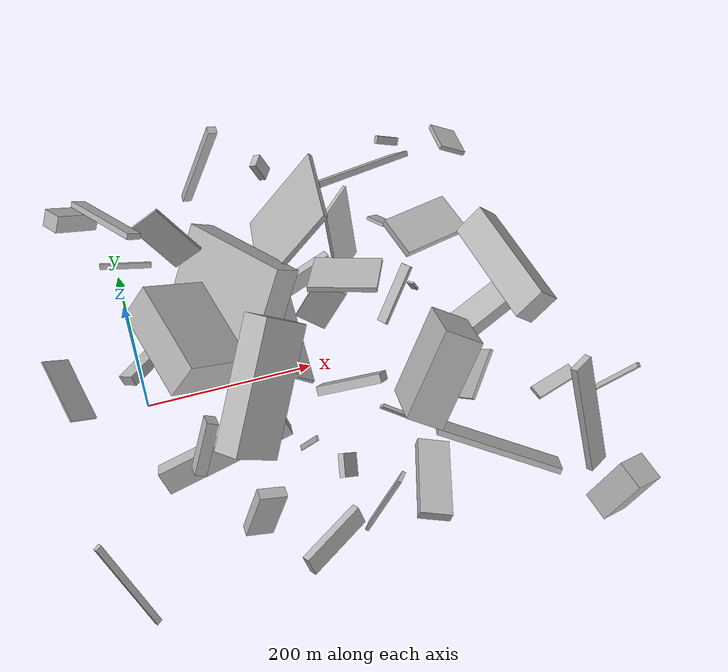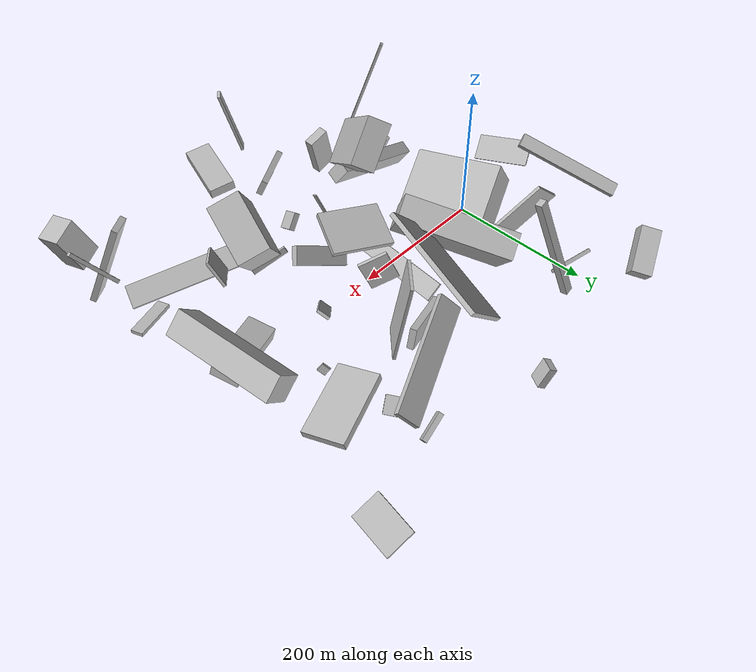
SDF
<sdf version="1.6">
 <world name="default">
  <scene>
   <sky><clouds><speed>12</speed></clouds></sky>
   <ambient>0.4 0.4 0.4 1</ambient>
   <background>0.7 0.7 0.7 1</background>
   <shadows>1</shadows>
  </scene>
  <gravity>0 0 -9.8066</gravity>
  <magnetic_field>6e-06 2.3e-05 -4.2e-05</magnetic_field>
  <physics default="0" name="default_physics" type="ode">
   <ode>
    <solver>
     <type>quick</type>
     <iters>10</iters>
     <sor>1.0</sor>
     <use_dynamic_moi_rescaling>0</use_dynamic_moi_rescaling>
    </solver>
    <constraints>
     <cfm>0</cfm>
     <erp>0.2</erp>
     <contact_max_correcting_vel>100</contact_max_correcting_vel>
     <contact_surface_layer>0.001</contact_surface_layer>
    </constraints>
   </ode>
   <max_step_size>0.004</max_step_size>
   <real_time_factor>1</real_time_factor>
   <real_time_update_rate>250</real_time_update_rate>
  </physics>
  <light name="sun" type="directional">
   <pose>0 0 10 0 0 0</pose>
   <diffuse>0.8 0.8 0.8 1</diffuse>
   <specular>0.2 0.2 0.2 1</specular>
   <attenuation>
    <range>1000</range>
    <constant>0.9</constant>
    <linear>0.01</linear>
    <quadratic>0.001</quadratic>
   </attenuation>
   <direction>-0.5 0.1 -0.9</direction>
  </light>
  <model name="building_1">
   <static>0</static>
   <pose>-1.569263986144028 -123.42864435132404 40.26653897094262 -0.998273766843868 0.9479654298079464 -1.024096351584111</pose>
   <link name="link">
    <gravity>0</gravity>
    <pose>0 0 75.0 0 0 0</pose>
    <collision name="collision"><geometry><box><size>29 19 150</size></box></geometry></collision>
    <visual name="visual">
     <cast_shadows>0</cast_shadows>
     <geometry><box><size>29 19 150</size></box></geometry>
     <material>
      <script>
       <uri>model://HANNAS_wall/materials/scripts</uri>
       <uri>model://HANNAS_wall/materials/textures</uri>
       <name>vrc/HANNAS_wall</name>
      </script>
     </material>
    </visual>
   </link>
  </model>
  <model name="building_2">
   <static>0</static>
   <pose>-56.17902348504986 -247.1571734723762 77.47360956983543 1.6273385102789746 -0.32215294973063 -0.931673296291797</pose>
   <link name="link">
    <gravity>0</gravity>
    <pose>0 0 3.5 0 0 0</pose>
    <collision name="collision"><geometry><box><size>4 150 7</size></box></geometry></collision>
    <visual name="visual">
     <cast_shadows>0</cast_shadows>
     <geometry><box><size>4 150 7</size></box></geometry>
     <material>
      <script>
       <uri>model://HANNAS_wall/materials/scripts</uri>
       <uri>model://HANNAS_wall/materials/textures</uri>
       <name>vrc/HANNAS_wall</name>
      </script>
     </material>
    </visual>
   </link>
  </model>
  <model name="building_3">
   <static>0</static>
   <pose>43.564571001832405 184.42750755089446 29.729788997988422 -1.4992367498188097 -0.9511161482804016 1.309158741059582</pose>
   <link name="link">
    <gravity>0</gravity>
    <pose>0 0 32.0 0 0 0</pose>
    <collision name="collision"><geometry><box><size>7 5 64</size></box></geometry></collision>
    <visual name="visual">
     <cast_shadows>0</cast_shadows>
     <geometry><box><size>7 5 64</size></box></geometry>
     <material>
      <script>
       <uri>model://HANNAS_wall/materials/scripts</uri>
       <uri>model://HANNAS_wall/materials/textures</uri>
       <name>vrc/HANNAS_wall</name>
      </script>
     </material>
    </visual>
   </link>
  </model>
  <model name="building_4">
   <static>0</static>
   <pose>248.89319473352091 21.645395524413175 133.14220336348407 0.2981547645197869 0.1342629438190483 2.742395049422628</pose>
   <link name="link">
    <gravity>0</gravity>
    <pose>0 0 3.0 0 0 0</pose>
    <collision name="collision"><geometry><box><size>79 59 6</size></box></geometry></collision>
    <visual name="visual">
     <cast_shadows>0</cast_shadows>
     <geometry><box><size>79 59 6</size></box></geometry>
     <material>
      <script>
       <uri>model://HANNAS_wall/materials/scripts</uri>
       <uri>model://HANNAS_wall/materials/textures</uri>
       <name>vrc/HANNAS_wall</name>
      </script>
     </material>
    </visual>
   </link>
  </model>
  <model name="building_5">
   <static>0</static>
   <pose>313.0299326233222 209.99889289783073 92.12125840713269 -0.37572195222977595 0.7644998295788409 -1.4444507431106732</pose>
   <link name="link">
    <gravity>0</gravity>
    <pose>0 0 15.5 0 0 0</pose>
    <collision name="collision"><geometry><box><size>7 150 31</size></box></geometry></collision>
    <visual name="visual">
     <cast_shadows>0</cast_shadows>
     <geometry><box><size>7 150 31</size></box></geometry>
     <material>
      <script>
       <uri>model://HANNAS_wall/materials/scripts</uri>
       <uri>model://HANNAS_wall/materials/textures</uri>
       <name>vrc/HANNAS_wall</name>
      </script>
     </material>
    </visual>
   </link>
  </model>
  <model name="building_6">
   <static>0</static>
   <pose>139.61652897357766 82.63072922967382 75.70616437449432 0.37839768572166205 0.8341141851397884 -2.3153161948955305</pose>
   <link name="link">
    <gravity>0</gravity>
    <pose>0 0 18.0 0 0 0</pose>
    <collision name="collision"><geometry><box><size>103 150 36</size></box></geometry></collision>
    <visual name="visual">
     <cast_shadows>0</cast_shadows>
     <geometry><box><size>103 150 36</size></box></geometry>
     <material>
      <script>
       <uri>model://HANNAS_wall/materials/scripts</uri>
       <uri>model://HANNAS_wall/materials/textures</uri>
       <name>vrc/HANNAS_wall</name>
      </script>
     </material>
    </visual>
   </link>
  </model>
  <model name="building_7">
   <static>0</static>
   <pose>16.71833450547273 60.20270559882968 21.451938301468548 0.21963344606337612 -0.9637885059072149 2.110055712027399</pose>
   <link name="link">
    <gravity>0</gravity>
    <pose>0 0 11.5 0 0 0</pose>
    <collision name="collision"><geometry><box><size>13 108 23</size></box></geometry></collision>
    <visual name="visual">
     <cast_shadows>0</cast_shadows>
     <geometry><box><size>13 108 23</size></box></geometry>
     <material>
      <script>
       <uri>model://HANNAS_wall/materials/scripts</uri>
       <uri>model://HANNAS_wall/materials/textures</uri>
       <name>vrc/HANNAS_wall</name>
      </script>
     </material>
    </visual>
   </link>
  </model>
  <model name="building_8">
   <static>0</static>
   <pose>443.6653646315424 99.10180617277716 75.51184915561218 1.4793675720904513 0.7884474948741632 0.05556238827337608</pose>
   <link name="link">
    <gravity>0</gravity>
    <pose>0 0 75.0 0 0 0</pose>
    <collision name="collision"><geometry><box><size>34 42 150</size></box></geometry></collision>
    <visual name="visual">
     <cast_shadows>0</cast_shadows>
     <geometry><box><size>34 42 150</size></box></geometry>
     <material>
      <script>
       <uri>model://HANNAS_wall/materials/scripts</uri>
       <uri>model://HANNAS_wall/materials/textures</uri>
       <name>vrc/HANNAS_wall</name>
      </script>
     </material>
    </visual>
   </link>
  </model>
  <model name="building_9">
   <static>0</static>
   <pose>66.44473436624668 143.75172005504882 122.89673556295658 1.2732384018412384 -0.7137939551050853 -0.1532823115018016</pose>
   <link name="link">
    <gravity>0</gravity>
    <pose>0 0 2.0 0 0 0</pose>
    <collision name="collision"><geometry><box><size>43 73 4</size></box></geometry></collision>
    <visual name="visual">
     <cast_shadows>0</cast_shadows>
     <geometry><box><size>43 73 4</size></box></geometry>
     <material>
      <script>
       <uri>model://HANNAS_wall/materials/scripts</uri>
       <uri>model://HANNAS_wall/materials/textures</uri>
       <name>vrc/HANNAS_wall</name>
      </script>
     </material>
    </visual>
   </link>
  </model>
  <model name="building_10">
   <static>0</static>
   <pose>224.74576225236933 39.451173706773496 63.59756582627333 -2.1210728349259753 -1.136572278978015 0.03184990705147421</pose>
   <link name="link">
    <gravity>0</gravity>
    <pose>0 0 2.0 0 0 0</pose>
    <collision name="collision"><geometry><box><size>64 39 4</size></box></geometry></collision>
    <visual name="visual">
     <cast_shadows>0</cast_shadows>
     <geometry><box><size>64 39 4</size></box></geometry>
     <material>
      <script>
       <uri>model://HANNAS_wall/materials/scripts</uri>
       <uri>model://HANNAS_wall/materials/textures</uri>
       <name>vrc/HANNAS_wall</name>
      </script>
     </material>
    </visual>
   </link>
  </model>
  <model name="building_11">
   <static>0</static>
   <pose>183.31935620032743 28.1898714559304 41.757405174441516 0.06923629081584598 -0.6794964393026861 3.046274177902462</pose>
   <link name="link">
    <gravity>0</gravity>
    <pose>0 0 2.0 0 0 0</pose>
    <collision name="collision"><geometry><box><size>26 150 4</size></box></geometry></collision>
    <visual name="visual">
     <cast_shadows>0</cast_shadows>
     <geometry><box><size>26 150 4</size></box></geometry>
     <material>
      <script>
       <uri>model://HANNAS_wall/materials/scripts</uri>
       <uri>model://HANNAS_wall/materials/textures</uri>
       <name>vrc/HANNAS_wall</name>
      </script>
     </material>
    </visual>
   </link>
  </model>
  <model name="building_12">
   <static>0</static>
   <pose>220.41814450884291 203.97754386675285 93.57600826922233 1.0980021213738391 -0.7922730509816043 0.19712061581513213</pose>
   <link name="link">
    <gravity>0</gravity>
    <pose>0 0 75.0 0 0 0</pose>
    <collision name="collision"><geometry><box><size>120 6 150</size></box></geometry></collision>
    <visual name="visual">
     <cast_shadows>0</cast_shadows>
     <geometry><box><size>120 6 150</size></box></geometry>
     <material>
      <script>
       <uri>model://HANNAS_wall/materials/scripts</uri>
       <uri>model://HANNAS_wall/materials/textures</uri>
       <name>vrc/HANNAS_wall</name>
      </script>
     </material>
    </visual>
   </link>
  </model>
  <model name="building_13">
   <static>0</static>
   <pose>93.7300848786932 -205.18457188176615 57.397542930136765 -1.903772120295448 -1.246062543227207 0.3373549235430874</pose>
   <link name="link">
    <gravity>0</gravity>
    <pose>0 0 6.5 0 0 0</pose>
    <collision name="collision"><geometry><box><size>67 31 13</size></box></geometry></collision>
    <visual name="visual">
     <cast_shadows>0</cast_shadows>
     <geometry><box><size>67 31 13</size></box></geometry>
     <material>
      <script>
       <uri>model://HANNAS_wall/materials/scripts</uri>
       <uri>model://HANNAS_wall/materials/textures</uri>
       <name>vrc/HANNAS_wall</name>
      </script>
     </material>
    </visual>
   </link>
  </model>
  <model name="building_14">
   <static>0</static>
   <pose>106.03676294758262 238.24306074330062 77.31459214322672 -0.2499778720959424 0.23432713837614152 -1.5634074326943617</pose>
   <link name="link">
    <gravity>0</gravity>
    <pose>0 0 75.0 0 0 0</pose>
    <collision name="collision"><geometry><box><size>9 11 150</size></box></geometry></collision>
    <visual name="visual">
     <cast_shadows>0</cast_shadows>
     <geometry><box><size>9 11 150</size></box></geometry>
     <material>
      <script>
       <uri>model://HANNAS_wall/materials/scripts</uri>
       <uri>model://HANNAS_wall/materials/textures</uri>
       <name>vrc/HANNAS_wall</name>
      </script>
     </material>
    </visual>
   </link>
  </model>
  <model name="building_15">
   <static>0</static>
   <pose>268.5128637284615 -232.1870594988872 105.80785504145896 3.07888488877893 0.14776665237924572 -0.31968535247248375</pose>
   <link name="link">
    <gravity>0</gravity>
    <pose>0 0 6.5 0 0 0</pose>
    <collision name="collision"><geometry><box><size>34 88 13</size></box></geometry></collision>
    <visual name="visual">
     <cast_shadows>0</cast_shadows>
     <geometry><box><size>34 88 13</size></box></geometry>
     <material>
      <script>
       <uri>model://HANNAS_wall/materials/scripts</uri>
       <uri>model://HANNAS_wall/materials/textures</uri>
       <name>vrc/HANNAS_wall</name>
      </script>
     </material>
    </visual>
   </link>
  </model>
  <model name="building_16">
   <static>0</static>
   <pose>142.09734159386014 -88.68685518356483 110.2002277812091 0.6816715728931896 -0.41133003232193394 -0.8646139924215714</pose>
   <link name="link">
    <gravity>0</gravity>
    <pose>0 0 33.0 0 0 0</pose>
    <collision name="collision"><geometry><box><size>32 150 66</size></box></geometry></collision>
    <visual name="visual">
     <cast_shadows>0</cast_shadows>
     <geometry><box><size>32 150 66</size></box></geometry>
     <material>
      <script>
       <uri>model://HANNAS_wall/materials/scripts</uri>
       <uri>model://HANNAS_wall/materials/textures</uri>
       <name>vrc/HANNAS_wall</name>
      </script>
     </material>
    </visual>
   </link>
  </model>
  <model name="building_17">
   <static>0</static>
   <pose>228.2262764939503 -63.089338277171834 40.126506528227175 -2.4324306440090595 -0.42225589003206754 -0.318835466901616</pose>
   <link name="link">
    <gravity>0</gravity>
    <pose>0 0 13.0 0 0 0</pose>
    <collision name="collision"><geometry><box><size>80 11 26</size></box></geometry></collision>
    <visual name="visual">
     <cast_shadows>0</cast_shadows>
     <geometry><box><size>80 11 26</size></box></geometry>
     <material>
      <script>
       <uri>model://HANNAS_wall/materials/scripts</uri>
       <uri>model://HANNAS_wall/materials/textures</uri>
       <name>vrc/HANNAS_wall</name>
      </script>
     </material>
    </visual>
   </link>
  </model>
  <model name="building_18">
   <static>0</static>
   <pose>393.2487419406057 141.21255917909406 33.28775528166951 0.17794847861929078 0.154458238876898 0.3191566025534656</pose>
   <link name="link">
    <gravity>0</gravity>
    <pose>0 0 5.0 0 0 0</pose>
    <collision name="collision"><geometry><box><size>96 55 10</size></box></geometry></collision>
    <visual name="visual">
     <cast_shadows>0</cast_shadows>
     <geometry><box><size>96 55 10</size></box></geometry>
     <material>
      <script>
       <uri>model://HANNAS_wall/materials/scripts</uri>
       <uri>model://HANNAS_wall/materials/textures</uri>
       <name>vrc/HANNAS_wall</name>
      </script>
     </material>
    </visual>
   </link>
  </model>
  <model name="building_19">
   <static>0</static>
   <pose>-44.66180062028489 257.7616090241121 47.8645821958901 -0.2606717232391657 0.575133213796499 0.4152533571840102</pose>
   <link name="link">
    <gravity>0</gravity>
    <pose>0 0 11.0 0 0 0</pose>
    <collision name="collision"><geometry><box><size>63 27 22</size></box></geometry></collision>
    <visual name="visual">
     <cast_shadows>0</cast_shadows>
     <geometry><box><size>63 27 22</size></box></geometry>
     <material>
      <script>
       <uri>model://HANNAS_wall/materials/scripts</uri>
       <uri>model://HANNAS_wall/materials/textures</uri>
       <name>vrc/HANNAS_wall</name>
      </script>
     </material>
    </visual>
   </link>
  </model>
  <model name="building_20">
   <static>0</static>
   <pose>421.37784993052486 -20.387087596966197 37.02638367624072 2.5373473377337876 -1.31462636952137 2.544815721915311</pose>
   <link name="link">
    <gravity>0</gravity>
    <pose>0 0 18.5 0 0 0</pose>
    <collision name="collision"><geometry><box><size>19 93 37</size></box></geometry></collision>
    <visual name="visual">
     <cast_shadows>0</cast_shadows>
     <geometry><box><size>19 93 37</size></box></geometry>
     <material>
      <script>
       <uri>model://HANNAS_wall/materials/scripts</uri>
       <uri>model://HANNAS_wall/materials/textures</uri>
       <name>vrc/HANNAS_wall</name>
      </script>
     </material>
    </visual>
   </link>
  </model>
  <model name="building_21">
   <static>0</static>
   <pose>311.0447256568107 -138.9889650802953 30.858136431135705 -1.8701718561506904 -0.6302542650541252 -1.8951907584956615</pose>
   <link name="link">
    <gravity>0</gravity>
    <pose>0 0 75.0 0 0 0</pose>
    <collision name="collision"><geometry><box><size>32 7 150</size></box></geometry></collision>
    <visual name="visual">
     <cast_shadows>0</cast_shadows>
     <geometry><box><size>32 7 150</size></box></geometry>
     <material>
      <script>
       <uri>model://HANNAS_wall/materials/scripts</uri>
       <uri>model://HANNAS_wall/materials/textures</uri>
       <name>vrc/HANNAS_wall</name>
      </script>
     </material>
    </visual>
   </link>
  </model>
  <model name="building_22">
   <static>0</static>
   <pose>462.64669680995837 -266.7693161176635 68.19812014104602 -1.7028259347836563 -0.3568601731904781 -2.833399970411117</pose>
   <link name="link">
    <gravity>0</gravity>
    <pose>0 0 16.0 0 0 0</pose>
    <collision name="collision"><geometry><box><size>36 67 32</size></box></geometry></collision>
    <visual name="visual">
     <cast_shadows>0</cast_shadows>
     <geometry><box><size>36 67 32</size></box></geometry>
     <material>
      <script>
       <uri>model://HANNAS_wall/materials/scripts</uri>
       <uri>model://HANNAS_wall/materials/textures</uri>
       <name>vrc/HANNAS_wall</name>
      </script>
     </material>
    </visual>
   </link>
  </model>
  <model name="building_23">
   <static>0</static>
   <pose>160.88370412844253 -242.29465126952294 31.955108007803084 -3.029267574170956 1.1572837252528612 -0.9185450946071346</pose>
   <link name="link">
    <gravity>0</gravity>
    <pose>0 0 4.5 0 0 0</pose>
    <collision name="collision"><geometry><box><size>25 80 9</size></box></geometry></collision>
    <visual name="visual">
     <cast_shadows>0</cast_shadows>
     <geometry><box><size>25 80 9</size></box></geometry>
     <material>
      <script>
       <uri>model://HANNAS_wall/materials/scripts</uri>
       <uri>model://HANNAS_wall/materials/textures</uri>
       <name>vrc/HANNAS_wall</name>
      </script>
     </material>
    </visual>
   </link>
  </model>
  <model name="building_24">
   <static>0</static>
   <pose>323.16892134067473 -70.99497717440818 74.92076716950228 0.9035369992637329 0.36439055921235974 -0.4363375137028818</pose>
   <link name="link">
    <gravity>0</gravity>
    <pose>0 0 40.0 0 0 0</pose>
    <collision name="collision"><geometry><box><size>44 108 80</size></box></geometry></collision>
    <visual name="visual">
     <cast_shadows>0</cast_shadows>
     <geometry><box><size>44 108 80</size></box></geometry>
     <material>
      <script>
       <uri>model://HANNAS_wall/materials/scripts</uri>
       <uri>model://HANNAS_wall/materials/textures</uri>
       <name>vrc/HANNAS_wall</name>
      </script>
     </material>
    </visual>
   </link>
  </model>
  <model name="building_25">
   <static>0</static>
   <pose>76.1070345099422 -29.710385755446765 73.98601609961163 1.4220954982361385 -0.5735917585122228 -2.8027528318272834</pose>
   <link name="link">
    <gravity>0</gravity>
    <pose>0 0 59.0 0 0 0</pose>
    <collision name="collision"><geometry><box><size>88 50 118</size></box></geometry></collision>
    <visual name="visual">
     <cast_shadows>0</cast_shadows>
     <geometry><box><size>88 50 118</size></box></geometry>
     <material>
      <script>
       <uri>model://HANNAS_wall/materials/scripts</uri>
       <uri>model://HANNAS_wall/materials/textures</uri>
       <name>vrc/HANNAS_wall</name>
      </script>
     </material>
    </visual>
   </link>
  </model>
  <model name="building_26">
   <static>0</static>
   <pose>288.3769787882241 182.40392591183914 75.48863036138513 2.753977498189566 0.8654533829242502 1.4854146669973813</pose>
   <link name="link">
    <gravity>0</gravity>
    <pose>0 0 6.0 0 0 0</pose>
    <collision name="collision"><geometry><box><size>4 5 12</size></box></geometry></collision>
    <visual name="visual">
     <cast_shadows>0</cast_shadows>
     <geometry><box><size>4 5 12</size></box></geometry>
     <material>
      <script>
       <uri>model://HANNAS_wall/materials/scripts</uri>
       <uri>model://HANNAS_wall/materials/textures</uri>
       <name>vrc/HANNAS_wall</name>
      </script>
     </material>
    </visual>
   </link>
  </model>
  <model name="building_27">
   <static>0</static>
   <pose>382.66372244297605 -85.10105097952362 81.22187795894165 -2.054255563489804 -0.49233134115144966 2.6883919046146634</pose>
   <link name="link">
    <gravity>0</gravity>
    <pose>0 0 30.0 0 0 0</pose>
    <collision name="collision"><geometry><box><size>4 37 60</size></box></geometry></collision>
    <visual name="visual">
     <cast_shadows>0</cast_shadows>
     <geometry><box><size>4 37 60</size></box></geometry>
     <material>
      <script>
       <uri>model://HANNAS_wall/materials/scripts</uri>
       <uri>model://HANNAS_wall/materials/textures</uri>
       <name>vrc/HANNAS_wall</name>
      </script>
     </material>
    </visual>
   </link>
  </model>
  <model name="building_28">
   <static>0</static>
   <pose>378.3523324181931 257.05044659245584 90.46390031799257 2.593857543555034 -0.5060171316698772 -1.1763210850699592</pose>
   <link name="link">
    <gravity>0</gravity>
    <pose>0 0 5.0 0 0 0</pose>
    <collision name="collision"><geometry><box><size>6 34 10</size></box></geometry></collision>
    <visual name="visual">
     <cast_shadows>0</cast_shadows>
     <geometry><box><size>6 34 10</size></box></geometry>
     <material>
      <script>
       <uri>model://HANNAS_wall/materials/scripts</uri>
       <uri>model://HANNAS_wall/materials/textures</uri>
       <name>vrc/HANNAS_wall</name>
      </script>
     </material>
    </visual>
   </link>
  </model>
  <model name="building_29">
   <static>0</static>
   <pose>49.09057359902699 -129.85233519275772 93.82666243010203 2.1758917292204916 -0.3609677640863732 2.9393260902272482</pose>
   <link name="link">
    <gravity>0</gravity>
    <pose>0 0 10.0 0 0 0</pose>
    <collision name="collision"><geometry><box><size>13 62 20</size></box></geometry></collision>
    <visual name="visual">
     <cast_shadows>0</cast_shadows>
     <geometry><box><size>13 62 20</size></box></geometry>
     <material>
      <script>
       <uri>model://HANNAS_wall/materials/scripts</uri>
       <uri>model://HANNAS_wall/materials/textures</uri>
       <name>vrc/HANNAS_wall</name>
      </script>
     </material>
    </visual>
   </link>
  </model>
  <model name="building_30">
   <static>0</static>
   <pose>471.93108643542655 -192.84843342159485 83.81040778892873 -1.4481241919107941 -1.1600088122826409 1.979938012628766</pose>
   <link name="link">
    <gravity>0</gravity>
    <pose>0 0 13.0 0 0 0</pose>
    <collision name="collision"><geometry><box><size>150 8 26</size></box></geometry></collision>
    <visual name="visual">
     <cast_shadows>0</cast_shadows>
     <geometry><box><size>150 8 26</size></box></geometry>
     <material>
      <script>
       <uri>model://HANNAS_wall/materials/scripts</uri>
       <uri>model://HANNAS_wall/materials/textures</uri>
       <name>vrc/HANNAS_wall</name>
      </script>
     </material>
    </visual>
   </link>
  </model>
  <model name="building_31">
   <static>0</static>
   <pose>256.52300231064214 103.23413899448799 85.31009755009367 1.5278172899593347 -1.4221860216596984 2.406459132164054</pose>
   <link name="link">
    <gravity>0</gravity>
    <pose>0 0 25.0 0 0 0</pose>
    <collision name="collision"><geometry><box><size>117 4 50</size></box></geometry></collision>
    <visual name="visual">
     <cast_shadows>0</cast_shadows>
     <geometry><box><size>117 4 50</size></box></geometry>
     <material>
      <script>
       <uri>model://HANNAS_wall/materials/scripts</uri>
       <uri>model://HANNAS_wall/materials/textures</uri>
       <name>vrc/HANNAS_wall</name>
      </script>
     </material>
    </visual>
   </link>
  </model>
  <model name="building_32">
   <static>0</static>
   <pose>218.4315216342836 282.0717844606403 41.509731429578075 -0.08969901101003266 0.460222532495446 2.5345114458891262</pose>
   <link name="link">
    <gravity>0</gravity>
    <pose>0 0 14.0 0 0 0</pose>
    <collision name="collision"><geometry><box><size>10 19 28</size></box></geometry></collision>
    <visual name="visual">
     <cast_shadows>0</cast_shadows>
     <geometry><box><size>10 19 28</size></box></geometry>
     <material>
      <script>
       <uri>model://HANNAS_wall/materials/scripts</uri>
       <uri>model://HANNAS_wall/materials/textures</uri>
       <name>vrc/HANNAS_wall</name>
      </script>
     </material>
    </visual>
   </link>
  </model>
  <model name="building_33">
   <static>0</static>
   <pose>260.81513514810575 128.42628282849273 29.901975028512616 1.7438415030527528 -0.04083084014560895 -1.2770488873839856</pose>
   <link name="link">
    <gravity>0</gravity>
    <pose>0 0 38.0 0 0 0</pose>
    <collision name="collision"><geometry><box><size>9 31 76</size></box></geometry></collision>
    <visual name="visual">
     <cast_shadows>0</cast_shadows>
     <geometry><box><size>9 31 76</size></box></geometry>
     <material>
      <script>
       <uri>model://HANNAS_wall/materials/scripts</uri>
       <uri>model://HANNAS_wall/materials/textures</uri>
       <name>vrc/HANNAS_wall</name>
      </script>
     </material>
    </visual>
   </link>
  </model>
  <model name="building_34">
   <static>0</static>
   <pose>199.60252870411864 -263.507208825321 135.5421120673074 1.7238979704395831 -0.22864195325151396 2.4185361732624115</pose>
   <link name="link">
    <gravity>0</gravity>
    <pose>0 0 6.5 0 0 0</pose>
    <collision name="collision"><geometry><box><size>4 104 13</size></box></geometry></collision>
    <visual name="visual">
     <cast_shadows>0</cast_shadows>
     <geometry><box><size>4 104 13</size></box></geometry>
     <material>
      <script>
       <uri>model://HANNAS_wall/materials/scripts</uri>
       <uri>model://HANNAS_wall/materials/textures</uri>
       <name>vrc/HANNAS_wall</name>
      </script>
     </material>
    </visual>
   </link>
  </model>
  <model name="building_35">
   <static>0</static>
   <pose>279.2126181388179 -104.80351632316479 17.497212061456334 -0.26098389757863616 -0.4634426247488168 2.727507889012573</pose>
   <link name="link">
    <gravity>0</gravity>
    <pose>0 0 4.5 0 0 0</pose>
    <collision name="collision"><geometry><box><size>54 4 9</size></box></geometry></collision>
    <visual name="visual">
     <cast_shadows>0</cast_shadows>
     <geometry><box><size>54 4 9</size></box></geometry>
     <material>
      <script>
       <uri>model://HANNAS_wall/materials/scripts</uri>
       <uri>model://HANNAS_wall/materials/textures</uri>
       <name>vrc/HANNAS_wall</name>
      </script>
     </material>
    </visual>
   </link>
  </model>
  <model name="building_36">
   <static>0</static>
   <pose>346.3719319817943 178.639572795981 24.689185425499193 -2.9568760725710677 -0.5823816008407906 -2.611391521739248</pose>
   <link name="link">
    <gravity>0</gravity>
    <pose>0 0 2.0 0 0 0</pose>
    <collision name="collision"><geometry><box><size>23 26 4</size></box></geometry></collision>
    <visual name="visual">
     <cast_shadows>0</cast_shadows>
     <geometry><box><size>23 26 4</size></box></geometry>
     <material>
      <script>
       <uri>model://HANNAS_wall/materials/scripts</uri>
       <uri>model://HANNAS_wall/materials/textures</uri>
       <name>vrc/HANNAS_wall</name>
      </script>
     </material>
    </visual>
   </link>
  </model>
  <model name="building_37">
   <static>0</static>
   <pose>295.54596756039854 14.562547196368495 34.41575997190215 -0.8166156459535285 -0.47746670876710906 -1.2068130291264556</pose>
   <link name="link">
    <gravity>0</gravity>
    <pose>0 0 37.5 0 0 0</pose>
    <collision name="collision"><geometry><box><size>17 4 75</size></box></geometry></collision>
    <visual name="visual">
     <cast_shadows>0</cast_shadows>
     <geometry><box><size>17 4 75</size></box></geometry>
     <material>
      <script>
       <uri>model://HANNAS_wall/materials/scripts</uri>
       <uri>model://HANNAS_wall/materials/textures</uri>
       <name>vrc/HANNAS_wall</name>
      </script>
     </material>
    </visual>
   </link>
  </model>
  <model name="building_38">
   <static>0</static>
   <pose>2.7836734980095343 156.33558878325687 167.2607249546459 2.6921923119544235 0.5125709922825793 0.2170122106473595</pose>
   <link name="link">
    <gravity>0</gravity>
    <pose>0 0 3.5 0 0 0</pose>
    <collision name="collision"><geometry><box><size>17 133 7</size></box></geometry></collision>
    <visual name="visual">
     <cast_shadows>0</cast_shadows>
     <geometry><box><size>17 133 7</size></box></geometry>
     <material>
      <script>
       <uri>model://HANNAS_wall/materials/scripts</uri>
       <uri>model://HANNAS_wall/materials/textures</uri>
       <name>vrc/HANNAS_wall</name>
      </script>
     </material>
    </visual>
   </link>
  </model>
  <model name="building_39">
   <static>0</static>
   <pose>470.8903058870881 248.72196767939613 45.95943927439576 -2.049946394958831 -1.0769519940573546 0.3512278315006664</pose>
   <link name="link">
    <gravity>0</gravity>
    <pose>0 0 27.0 0 0 0</pose>
    <collision name="collision"><geometry><box><size>6 37 54</size></box></geometry></collision>
    <visual name="visual">
     <cast_shadows>0</cast_shadows>
     <geometry><box><size>6 37 54</size></box></geometry>
     <material>
      <script>
       <uri>model://HANNAS_wall/materials/scripts</uri>
       <uri>model://HANNAS_wall/materials/textures</uri>
       <name>vrc/HANNAS_wall</name>
      </script>
     </material>
    </visual>
   </link>
  </model>
  <model name="building_40">
   <static>0</static>
   <pose>434.25216044201625 -131.8321602816361 35.596341576657814 1.5522442351799117 -0.06881771829475038 1.8710267542120296</pose>
   <link name="link">
    <gravity>0</gravity>
    <pose>0 0 28.0 0 0 0</pose>
    <collision name="collision"><geometry><box><size>17 5 56</size></box></geometry></collision>
    <visual name="visual">
     <cast_shadows>0</cast_shadows>
     <geometry><box><size>17 5 56</size></box></geometry>
     <material>
      <script>
       <uri>model://HANNAS_wall/materials/scripts</uri>
       <uri>model://HANNAS_wall/materials/textures</uri>
       <name>vrc/HANNAS_wall</name>
      </script>
     </material>
    </visual>
   </link>
  </model>
  <model name="building_41">
   <static>0</static>
   <pose>164.92735941056446 -122.04389469955073 30.63174718037918 1.199406454478451 -0.24122196484656147 -3.085335144291893</pose>
   <link name="link">
    <gravity>0</gravity>
    <pose>0 0 3.0 0 0 0</pose>
    <collision name="collision"><geometry><box><size>2 56 6</size></box></geometry></collision>
    <visual name="visual">
     <cast_shadows>0</cast_shadows>
     <geometry><box><size>2 56 6</size></box></geometry>
     <material>
      <script>
       <uri>model://HANNAS_wall/materials/scripts</uri>
       <uri>model://HANNAS_wall/materials/textures</uri>
       <name>vrc/HANNAS_wall</name>
      </script>
     </material>
    </visual>
   </link>
  </model>
  <model name="building_42">
   <static>0</static>
   <pose>355.2292936626359 72.14785918076997 10.905309040620832 -1.2928624030044529 -0.5924450769706106 -1.1239293257190521</pose>
   <link name="link">
    <gravity>0</gravity>
    <pose>0 0 1.5 0 0 0</pose>
    <collision name="collision"><geometry><box><size>12 12 3</size></box></geometry></collision>
    <visual name="visual">
     <cast_shadows>0</cast_shadows>
     <geometry><box><size>12 12 3</size></box></geometry>
     <material>
      <script>
       <uri>model://HANNAS_wall/materials/scripts</uri>
       <uri>model://HANNAS_wall/materials/textures</uri>
       <name>vrc/HANNAS_wall</name>
      </script>
     </material>
    </visual>
   </link>
  </model>
  <model name="building_43">
   <static>0</static>
   <pose>-68.52925783310249 9.593525043960167 54.43044743427164 0.3108485775073054 -0.8509202654871879 -0.007807607977256376</pose>
   <link name="link">
    <gravity>0</gravity>
    <pose>0 0 18.5 0 0 0</pose>
    <collision name="collision"><geometry><box><size>2 80 37</size></box></geometry></collision>
    <visual name="visual">
     <cast_shadows>0</cast_shadows>
     <geometry><box><size>2 80 37</size></box></geometry>
     <material>
      <script>
       <uri>model://HANNAS_wall/materials/scripts</uri>
       <uri>model://HANNAS_wall/materials/textures</uri>
       <name>vrc/HANNAS_wall</name>
      </script>
     </material>
    </visual>
   </link>
  </model>
  <model name="building_44">
   <static>0</static>
   <pose>192.77823183978862 -153.17037002041604 24.24682373466943 2.4426384583915763 -0.49431055043353234 1.3806310796631471</pose>
   <link name="link">
    <gravity>0</gravity>
    <pose>0 0 12.5 0 0 0</pose>
    <collision name="collision"><geometry><box><size>27 8 25</size></box></geometry></collision>
    <visual name="visual">
     <cast_shadows>0</cast_shadows>
     <geometry><box><size>27 8 25</size></box></geometry>
     <material>
      <script>
       <uri>model://HANNAS_wall/materials/scripts</uri>
       <uri>model://HANNAS_wall/materials/textures</uri>
       <name>vrc/HANNAS_wall</name>
      </script>
     </material>
    </visual>
   </link>
  </model>
  <model name="building_45">
   <static>0</static>
   <pose>468.8032393956401 -168.59459898871188 75.28792846825033 -0.26904547387701927 -0.5681561304980809 -3.0132266754456993</pose>
   <link name="link">
    <gravity>0</gravity>
    <pose>0 0 40.0 0 0 0</pose>
    <collision name="collision"><geometry><box><size>5 5 80</size></box></geometry></collision>
    <visual name="visual">
     <cast_shadows>0</cast_shadows>
     <geometry><box><size>5 5 80</size></box></geometry>
     <material>
      <script>
       <uri>model://HANNAS_wall/materials/scripts</uri>
       <uri>model://HANNAS_wall/materials/textures</uri>
       <name>vrc/HANNAS_wall</name>
      </script>
     </material>
    </visual>
   </link>
  </model>
 </world>
</sdf>
